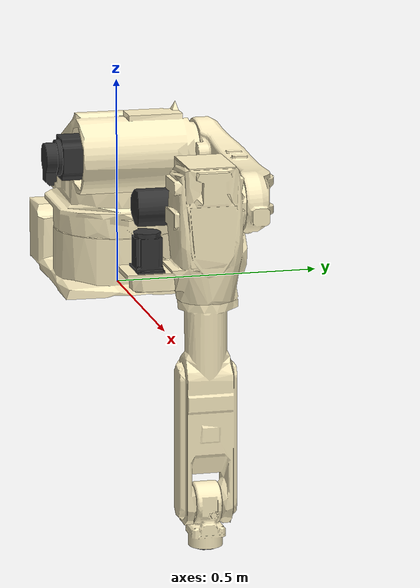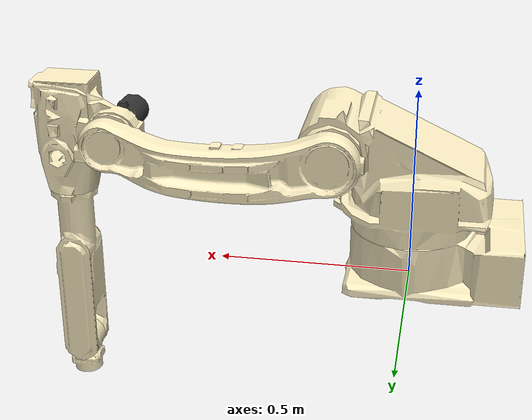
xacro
<?xml version='1.0' encoding='utf-8'?>
<robot name="hdr_robot" xmlns:xacro="http://ros.org/wiki/xacro">
  <material name="ivory">
    <color rgba="1.0 0.945 0.773 1.0" />
  </material>
  <material name="black">
    <color rgba="0.2 0.2 0.2 1.0"/>
  </material>
  <material name="gray">
    <color rgba="0.4 0.4 0.4 1.0"/>
  </material>
  <xacro:property name="mesh_scale" value="0.001" />
  <link name="base_link">
    <visual>
      <geometry>
        <mesh filename="file://$(find hdr_description)/meshes/robots/ha006b/visual/base_body.stl" scale="${mesh_scale} ${mesh_scale} ${mesh_scale}" />
      </geometry>
      <material name="ivory" />
    </visual>
    <collision>
      <geometry>
        <mesh filename="file://$(find hdr_description)/meshes/robots/ha006b/collision/base_body.stl" scale="${mesh_scale} ${mesh_scale} ${mesh_scale}" />
      </geometry>
    </collision>
    <inertial>
      <mass value="31.2543" />
      <origin xyz="0 0 0" rpy="0 0 0" />
      <inertia ixx="0.3359" ixy="0" ixz="0" iyy="0.5966" iyz="0" izz="0.7941" />
    </inertial>
  </link>
  <link name="lower_frame_link">
    <visual>
      <geometry>
        <mesh filename="file://$(find hdr_description)/meshes/robots/ha006b/visual/lower_frame.stl" scale="${mesh_scale} ${mesh_scale} ${mesh_scale}" />
      </geometry>
      <material name="ivory" />
    </visual>
    <collision>
      <geometry>
        <mesh filename="file://$(find hdr_description)/meshes/robots/ha006b/collision/lower_frame.stl" scale="${mesh_scale} ${mesh_scale} ${mesh_scale}" />
      </geometry>
    </collision>
    <inertial>
      <mass value="44.2299" />
      <origin xyz="0 0 0" rpy="0 0 0"/>
      <inertia ixx="0.889" ixy="0" ixz="0" iyy="1.4098" iyz="0" izz="1.2785" />
    </inertial>
  </link>
  <link name="upper_frame_link">
    <visual>
      <geometry>
        <mesh filename="file://$(find hdr_description)/meshes/robots/ha006b/visual/upper_frame.stl" scale="${mesh_scale} ${mesh_scale} ${mesh_scale}" />
      </geometry>
      <material name="ivory" />
    </visual>
    <collision>
      <geometry>
        <mesh filename="file://$(find hdr_description)/meshes/robots/ha006b/collision/upper_frame.stl" scale="${mesh_scale} ${mesh_scale} ${mesh_scale}" />
      </geometry>
    </collision>
    <inertial>
      <mass value="22.4028" />
      <origin xyz="0 0 0" rpy="0 0 0"/>
      <inertia ixx="1.0009" ixy="0" ixz="0" iyy="1.027" iyz="0" izz="0.0922" />
    </inertial>
  </link>
  <link name="arm_link">
    <visual>
      <geometry>
        <mesh filename="file://$(find hdr_description)/meshes/robots/ha006b/visual/arm.stl" scale="${mesh_scale} ${mesh_scale} ${mesh_scale}" />
      </geometry>
      <material name="ivory" />
    </visual>
    <collision>
      <geometry>
        <mesh filename="file://$(find hdr_description)/meshes/robots/ha006b/collision/arm.stl" scale="${mesh_scale} ${mesh_scale} ${mesh_scale}" />
      </geometry>
    </collision>
    <inertial>
      <mass value="14.2656" />
      <origin xyz="0 0 0" rpy="0 0 0"/>
      <inertia ixx="0.2386" ixy="0" ixz="0" iyy="0.2293" iyz="0" izz="0.2349" />
    </inertial>
  </link>
  <link name="wrist_body_link">
    <visual>
      <geometry>
        <mesh filename="file://$(find hdr_description)/meshes/robots/ha006b/visual/wrist_body.stl" scale="${mesh_scale} ${mesh_scale} ${mesh_scale}" />
      </geometry>
      <material name="ivory" />
    </visual>
    <collision>
      <geometry>
        <mesh filename="file://$(find hdr_description)/meshes/robots/ha006b/collision/wrist_body.stl" scale="${mesh_scale} ${mesh_scale} ${mesh_scale}" />
      </geometry>
    </collision>
    <inertial>
      <mass value="7.0632" />
      <origin xyz="0 0 0" rpy="0 0 0"/>
      <inertia ixx="0.0202" ixy="0" ixz="0" iyy="0.1719" iyz="0" izz="0.1734" />
    </inertial>
  </link>
  <link name="wrist_holder_link">
    <visual>
      <geometry>
        <mesh filename="file://$(find hdr_description)/meshes/robots/ha006b/visual/wrist_holder.stl" scale="${mesh_scale} ${mesh_scale} ${mesh_scale}" />
      </geometry>
      <material name="ivory" />
    </visual>
    <collision>
      <geometry>
        <mesh filename="file://$(find hdr_description)/meshes/robots/ha006b/collision/wrist_holder.stl" scale="${mesh_scale} ${mesh_scale} ${mesh_scale}" />
      </geometry>
    </collision>
    <inertial>
      <mass value="3.8171" />
      <origin xyz="0 0 0" rpy="0 0 0"/>
      <inertia ixx="0.0087" ixy="0" ixz="0" iyy="0.0097" iyz="0" izz="0.0048" />
    </inertial>
  </link>
  <link name="flange_link">
    <visual>
      <geometry>
        <mesh filename="file://$(find hdr_description)/meshes/robots/ha006b/visual/flange.stl" scale="${mesh_scale} ${mesh_scale} ${mesh_scale}" />
      </geometry>
      <material name="gray" />
    </visual>
    <collision>
      <geometry>
        <mesh filename="file://$(find hdr_description)/meshes/robots/ha006b/collision/flange.stl" scale="${mesh_scale} ${mesh_scale} ${mesh_scale}" />
      </geometry>
    </collision>
    <inertial>
      <mass value="0.4672" />
      <origin xyz="0 0 0" rpy="0 0 0" />
      <inertia ixx="0.0002" ixy="0" ixz="0" iyy="0.0002" iyz="0" izz="0.0002" />
    </inertial>
  </link>
  <link name="motor_s">
    <visual>
      <geometry>
        <mesh filename="file://$(find hdr_description)/meshes/robots/ha006b/visual/motor_s.stl" scale="${mesh_scale} ${mesh_scale} ${mesh_scale}"/>
      </geometry>
      <material name="black"/>
    </visual>
    <collision>
      <geometry>
        <mesh filename="file://$(find hdr_description)/meshes/robots/ha006b/collision/motor_s.stl" scale="${mesh_scale} ${mesh_scale} ${mesh_scale}"/>
      </geometry>
    </collision>
    <inertial>
      <mass value="0"/>
      <origin xyz="0 0 0" rpy="0 0 0"/>
      <inertia ixx="1e-6" ixy="0" ixz="0" iyy="1e-6" iyz="0" izz="1e-6"/>
    </inertial>
  </link>
  <link name="motor_v_r2">
    <visual>
      <geometry>
        <mesh filename="file://$(find hdr_description)/meshes/robots/ha006b/visual/motor_v_r2.stl" scale="${mesh_scale} ${mesh_scale} ${mesh_scale}"/>
      </geometry>
      <material name="black"/>
    </visual>
    <collision>
      <geometry>
        <mesh filename="file://$(find hdr_description)/meshes/robots/ha006b/collision/motor_v_r2.stl" scale="${mesh_scale} ${mesh_scale} ${mesh_scale}"/>
      </geometry>
    </collision>
    <inertial>
      <mass value="0"/>
      <origin xyz="0 0 0" rpy="0 0 0"/>
      <inertia ixx="1e-6" ixy="0" ixz="0" iyy="1e-6" iyz="0" izz="1e-6"/>
    </inertial>
  </link>

  <joint name="j1" type="revolute">
    <parent link="base_link" />
    <child link="lower_frame_link" />
    <origin xyz="0 0 0" rpy="0 0 0" />
    <axis xyz="0 0 1" />
    <limit lower="-3.0" upper="3.0" effort="358.4" velocity="4.01" />
  </joint>
  <joint name="j2" type="revolute">
    <parent link="lower_frame_link" />
    <child link="upper_frame_link" />
    <origin xyz="0.2 0 0.3585" rpy="0 1.5708 0" />
    <axis xyz="0 -1 0" />
    <limit lower="-1.36" upper="3.14" effort="721.92" velocity="4.01" />
  </joint>
  <joint name="j3" type="revolute">
    <parent link="upper_frame_link" />
    <child link="arm_link" />
    <origin xyz="0 0 0.560" rpy="0 0 0" />
    <axis xyz="0 -1 0" />
    <limit lower="-1.43" upper="3.14" effort="209.336" velocity="4.01" />
  </joint>
  <joint name="j4" type="revolute">
    <parent link="arm_link" />
    <child link="wrist_body_link" />
    <origin xyz="0 0 0.14" rpy="0 0 0" />
    <axis xyz="1 0 0" />
    <limit lower="-3.14" upper="3.14" effort="19.461" velocity="7.5" />
  </joint>
  <joint name="j5" type="revolute">
    <parent link="wrist_body_link" />
    <child link="wrist_holder_link" />
    <origin xyz="0.65 0 0" rpy="0 -1.5708 0" />
    <axis xyz="0 -1 0" />
    <limit lower="-2.356" upper="2.356" effort="19.08" velocity="7.5" />
  </joint>
  <joint name="j6" type="revolute">
    <parent link="wrist_holder_link" />
    <child link="flange_link" />
    <origin xyz="0 0 -0.105" rpy="0 0 0" />
    <axis xyz="0 0 -1" />
    <limit lower="-6.283" upper="6.283" effort="8.024" velocity="11.17" />
  </joint>

  <joint name="joint_motor_s" type="fixed">
    <parent link="lower_frame_link"/>
    <child link="motor_s"/>
    <origin xyz="0 0 0" rpy="0 0 0"/>
    <axis xyz="1 0 0"/>
  </joint>
  <joint name="joint_motor_v_r2" type="fixed">
    <parent link="arm_link"/>
    <child link="motor_v_r2"/>
    <origin xyz="-0.2 0 -0.9185" rpy="0 0 0"/>
    <axis xyz="1 0 0"/>
  </joint>

  <link name="base"/>
  <joint name="base_link-base" type="fixed">
    <origin xyz="0 0 0" rpy="0 0 0"/>
    <parent link="base_link"/>
    <child link="base"/>
  </joint>
  <link name="flange"/>
  <joint name="flange_link-flange" type="fixed">
    <origin xyz="0 0 0" rpy="0 1.5708 0"/>
    <parent link="flange_link"/>
    <child link="flange"/>
  </joint>
  <link name="tool0"/>
  <joint name="flange-tool0" type="fixed">
    <origin xyz="0 0 0" rpy="0 1.5708 0"/>
    <parent link="flange"/>
    <child link="tool0"/>
  </joint>

  <link name="world"/>
  <joint name="world_joint" type="fixed">
    <parent link="world"/>
    <child link="base_link"/>
    <origin xyz="0 0 0" rpy="0 0 0"/>
  </joint>
</robot>
